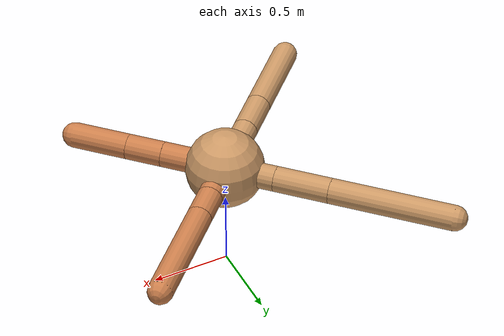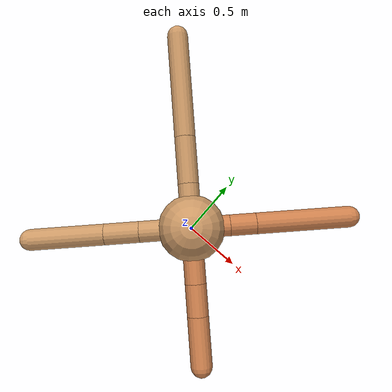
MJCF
<mujoco model="ant">
  <compiler angle="degree" coordinate="local" inertiafromgeom="true" />
  <option integrator="RK4" timestep="0.01" />
  <custom>
    <numeric data="0.0 0.0 0.55 1.0 0.0 0.0 0.0 0.0 1.0 0.0 -1.0 0.0 -1.0 0.0 1.0" name="init_qpos" />
  </custom>
  <default>
    <joint armature="1" damping="1" limited="true" />
    <geom conaffinity="0" condim="3" density="5.0" friction="1.5 0.1 0.1" margin="0.01" rgba="0.8 0.6 0.4 1" />
  </default>
  <worldbody>
    <body name="torso" pos="0 0 0.75">
      <geom name="torso_geom" pos="0 0 0" size="0.25" type="sphere" />

      <body name="front_left_leg" pos="0 0 0">
        <geom fromto="0.0 0.0 0.0 0.20132034643519092 0.20132034643519092 0.0" name="aux_1_geom" size="0.08" type="capsule" rgba=".8 .5 .3 1" />
        <body name="aux_1" pos="0.20132034643519092 0.20132034643519092 0.0">
          <joint axis="0 0 1" name="hip_1" pos="0.0 0.0 0.0" range="-40 40" type="hinge" />
          <geom fromto="0.0 0.0 0.0 0.136828329726464 0.136828329726464 0.0" name="left_leg_geom" size="0.08" type="capsule" rgba=".8 .5 .3 1" />
          <body pos="0.136828329726464 0.136828329726464 0.0" name="front_left_foot">
            <joint axis="-1 1 0" name="ankle_1" pos="0.0 0.0 0.0" range="30 100" type="hinge" />
            <geom fromto="0.0 0.0 0.0 0.48861551531057457 0.48861551531057457 0.0" name="left_ankle_geom" size="0.08" type="capsule" rgba=".8 .5 .3 1" />
          </body>
        </body>
      </body>
      <body name="front_right_leg" pos="0 0 0">
        <geom fromto="0.0 0.0 0.0 -0.23339938762360185 0.23339938762360185 0.0" name="aux_2_geom" size="0.08" type="capsule" />
        <body name="aux_2" pos="-0.23339938762360185 0.23339938762360185 0.0">
          <joint axis="0 0 1" name="hip_2" pos="0.0 0.0 0.0" range="-40 40" type="hinge" />
          <geom fromto="0.0 0.0 0.0 -0.25048707595470737 0.25048707595470737 0.0" name="right_leg_geom" size="0.08" type="capsule" />
          <body pos="-0.25048707595470737 0.25048707595470737 0.0" name="front_right_foot">
            <joint axis="1 1 0" name="ankle_2" pos="0.0 0.0 0.0" range="-100 -30" type="hinge" />
            <geom fromto="0.0 0.0 0.0 -0.5593272040232339 0.5593272040232339 0.0" name="right_ankle_geom" size="0.08" type="capsule" />
          </body>
        </body>
      </body>
      <body name="left_back_leg" pos="0 0 0">
        <geom fromto="0.0 0.0 0.0 -0.27343522249610025 -0.27343522249610025 0.0" name="aux_3_geom" size="0.08" type="capsule" />
        <body name="aux_3" pos="-0.27343522249610025 -0.27343522249610025 0.0">
          <joint axis="0 0 1" name="hip_3" pos="0.0 0.0 0.0" range="-40 40" type="hinge" />
          <geom fromto="0.0 0.0 0.0 -0.18178319545278782 -0.18178319545278782 0.0" name="back_leg_geom" size="0.08" type="capsule" />
          <body pos="-0.18178319545278782 -0.18178319545278782 0.0" name="left_back_foot">
            <joint axis="-1 1 0" name="ankle_3" pos="0.0 0.0 0.0" range="-100 -30" type="hinge" />
            <geom fromto="0.0 0.0 0.0 -0.3879397302081322 -0.3879397302081322 0.0" name="third_ankle_geom" size="0.08" type="capsule" />
          </body>
        </body>
      </body>
      <body name="right_back_leg" pos="0 0 0">
        <geom fromto="0.0 0.0 0.0 0.287748874028856 -0.287748874028856 0.0" name="aux_4_geom" size="0.08" type="capsule" rgba=".8 .5 .3 1" />
        <body name="aux_4" pos="0.287748874028856 -0.287748874028856 0.0">
          <joint axis="0 0 1" name="hip_4" pos="0.0 0.0 0.0" range="-40 40" type="hinge" />
          <geom fromto="0.0 0.0 0.0 0.1650503757157985 -0.1650503757157985 0.0" name="rightback_leg_geom" size="0.08" type="capsule" rgba=".8 .5 .3 1" />
          <body pos="0.1650503757157985 -0.1650503757157985 0.0" name="right_back_foot">
            <joint axis="1 1 0" name="ankle_4" pos="0.0 0.0 0.0" range="30 100" type="hinge" />
            <geom fromto="0.0 0.0 0.0 0.25377985564857214 -0.25377985564857214 0.0" name="fourth_ankle_geom" size="0.08" type="capsule" rgba=".8 .5 .3 1" />
          </body>
        </body>
      </body>
    </body>
  </worldbody>
  <actuator>
    <motor ctrllimited="true" ctrlrange="-1.0 1.0" joint="hip_4" gear="150" />
    <motor ctrllimited="true" ctrlrange="-1.0 1.0" joint="ankle_4" gear="150" />
    <motor ctrllimited="true" ctrlrange="-1.0 1.0" joint="hip_1" gear="150" />
    <motor ctrllimited="true" ctrlrange="-1.0 1.0" joint="ankle_1" gear="150" />
    <motor ctrllimited="true" ctrlrange="-1.0 1.0" joint="hip_2" gear="150" />
    <motor ctrllimited="true" ctrlrange="-1.0 1.0" joint="ankle_2" gear="150" />
    <motor ctrllimited="true" ctrlrange="-1.0 1.0" joint="hip_3" gear="150" />
    <motor ctrllimited="true" ctrlrange="-1.0 1.0" joint="ankle_3" gear="150" />
  </actuator>
</mujoco>
